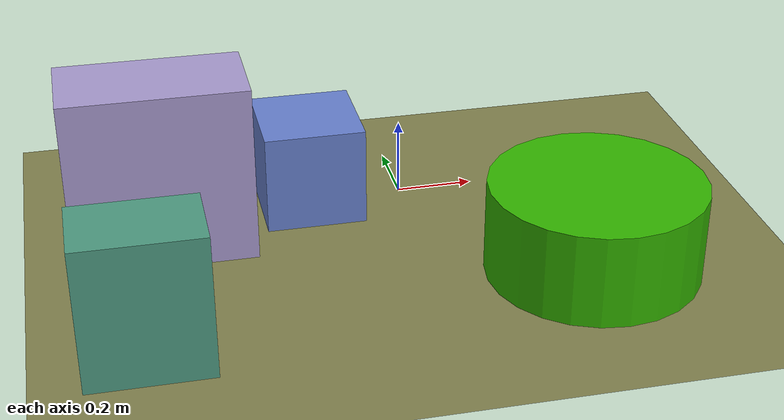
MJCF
<mujoco>
   <asset>
<texture type="skybox" builtin="gradient" rgb1="0.9 0.5 0.6" rgb2="0.2 0.5 0.1" width="256" height="256"/>
<texture name="gradient_0" builtin="gradient" rgb1="0.3 0.1 0.7" rgb2="0.5 0.9 0.9" width="200" height="200"/>
<texture name="gradient_1" builtin="gradient" rgb1="0.7 0.4 0.8" rgb2="0.6 0.8 0.8" width="200" height="200"/>
<texture name="flat_2" builtin="flat" rgb1="0.3 0.6 0.5" rgb2="0.3 0.6 0.5"  width="200" height="200"/>
<texture name="flat_3" builtin="flat" rgb1="0.2 0.7 0.0" rgb2="0.2 0.7 0.0"  width="200" height="200"/><material name="gradient_0_mat" reflectance="0" texture="gradient_0" texuniform="true"/>
<material name="gradient_1_mat" reflectance="0" texture="gradient_1" texuniform="true"/>
<material name="flat_2_mat" reflectance="0" texture="flat_2" texuniform="true"/>
<material name="flat_3_mat" reflectance="0" texture="flat_3" texuniform="true"/>
   </asset>

   <worldbody>
      <light diffuse=".9 .9 .9" pos="0 0 3" dir="0 0 -1"/>
     <geom type="plane" size="1 1 0.1" rgba="0.5 0.5 0.3 1"/>
<geom type="box" pos="-0.25 -0.02 0.13" size="0.13 0.13 0.13" material="gradient_0_mat" />
<geom type="box" pos="-0.65 -0.15 0.23" size="0.23 0.12 0.23" material="gradient_1_mat" />
<geom type="box" pos="-0.73 -0.66 0.18" size="0.15 0.1 0.18" material="flat_2_mat" />
<geom type="cylinder" pos="0.38 -0.5 0.12" size="0.27 0.12 0.12" material="flat_3_mat" /><camera euler="60 0 180" fovy="60" name="camera_a" pos="0 -1.5 1"></camera>   </worldbody>
</mujoco>
